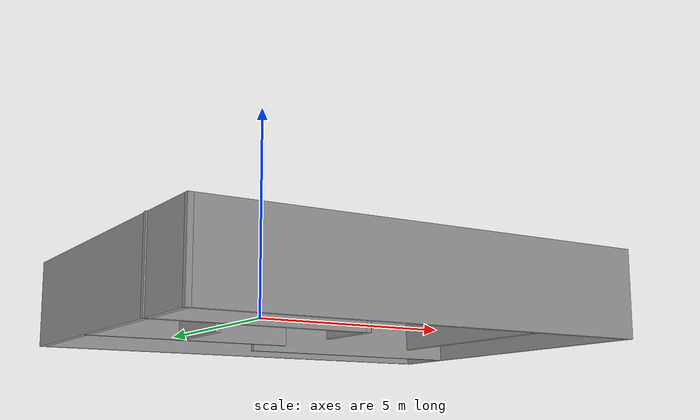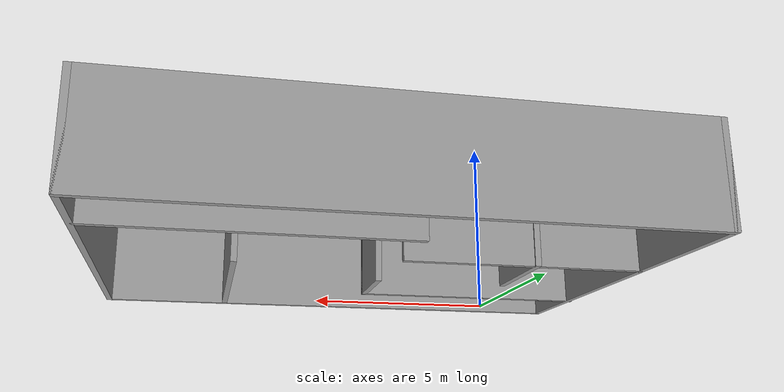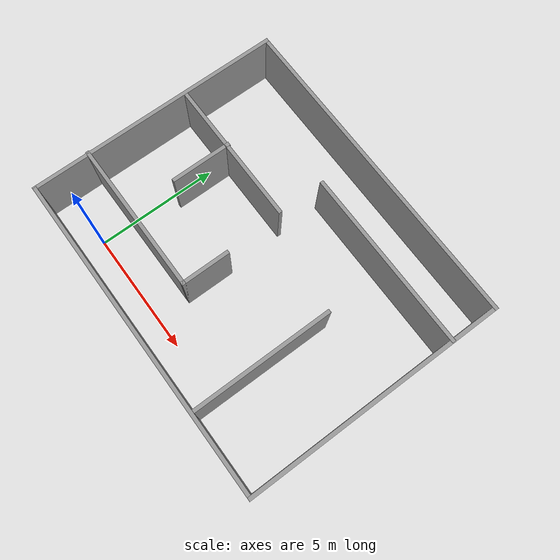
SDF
<?xml version='1.0'?>
<sdf version='1.6'>
  <model name='room1'>
    <pose frame=''>4.30941 4.255 0 0 -0 0</pose>
    <link name='Wall_0'>
      <collision name='Wall_0_Collision'>
        <geometry>
          <box>
            <size>10.5 0.15 2.5</size>
          </box>
        </geometry>
        <pose frame=''>0 0 1.25 0 -0 0</pose>
      </collision>
      <visual name='Wall_0_Visual'>
        <pose frame=''>0 0 1.25 0 -0 0</pose>
        <geometry>
          <box>
            <size>10.5 0.15 2.5</size>
          </box>
        </geometry>
        <material>
          <script>
            <uri>file://media/materials/scripts/gazebo.material</uri>
            <name>Gazebo/Grey</name>
          </script>
          <ambient>1 1 1 1</ambient>
        </material>
        <meta>
          <layer>0</layer>
        </meta>
      </visual>
      <pose frame=''>-6.52941 -0 0 0 -0 1.5708</pose>
    </link>
    <link name='Wall_1'>
      <collision name='Wall_1_Collision'>
        <geometry>
          <box>
            <size>13.25 0.15 2.5</size>
          </box>
        </geometry>
        <pose frame=''>0 0 1.25 0 -0 0</pose>
      </collision>
      <visual name='Wall_1_Visual'>
        <pose frame=''>0 0 1.25 0 -0 0</pose>
        <geometry>
          <box>
            <size>13.25 0.15 2.5</size>
          </box>
        </geometry>
        <material>
          <script>
            <uri>file://media/materials/scripts/gazebo.material</uri>
            <name>Gazebo/Grey</name>
          </script>
          <ambient>1 1 1 1</ambient>
        </material>
        <meta>
          <layer>0</layer>
        </meta>
      </visual>
      <pose frame=''>0.020592 5.175 0 0 -0 0</pose>
    </link>
    <link name='Wall_11'>
      <collision name='Wall_11_Collision'>
        <geometry>
          <box>
            <size>7.25 0.15 2.5</size>
          </box>
        </geometry>
        <pose frame=''>0 0 1.25 0 -0 0</pose>
      </collision>
      <visual name='Wall_11_Visual'>
        <pose frame=''>0 0 1.25 0 -0 0</pose>
        <geometry>
          <box>
            <size>7.25 0.15 2.5</size>
          </box>
        </geometry>
        <material>
          <script>
            <uri>file://media/materials/scripts/gazebo.material</uri>
            <name>Gazebo/Grey</name>
          </script>
          <ambient>1 1 1 1</ambient>
        </material>
        <meta>
          <layer>0</layer>
        </meta>
      </visual>
      <pose frame=''>2.99403 3.26734 0 0 -0 3.14159</pose>
    </link>
    <link name='Wall_13'>
      <collision name='Wall_13_Collision'>
        <geometry>
          <box>
            <size>6 0.15 2.5</size>
          </box>
        </geometry>
        <pose frame=''>0 0 1.25 0 -0 0</pose>
      </collision>
      <visual name='Wall_13_Visual'>
        <pose frame=''>0 0 1.25 0 -0 0</pose>
        <geometry>
          <box>
            <size>6 0.15 2.5</size>
          </box>
        </geometry>
        <material>
          <script>
            <uri>file://media/materials/scripts/gazebo.material</uri>
            <name>Gazebo/Grey</name>
          </script>
          <ambient>1 1 1 1</ambient>
        </material>
        <meta>
          <layer>0</layer>
        </meta>
      </visual>
      <pose frame=''>-3.54712 1.36769 0 0 -0 0</pose>
    </link>
    <link name='Wall_15'>
      <collision name='Wall_15_Collision'>
        <geometry>
          <box>
            <size>2.5 0.15 2.5</size>
          </box>
        </geometry>
        <pose frame=''>0 0 1.25 0 -0 0</pose>
      </collision>
      <visual name='Wall_15_Visual'>
        <pose frame=''>0 0 1.25 0 -0 0</pose>
        <geometry>
          <box>
            <size>2.5 0.15 2.5</size>
          </box>
        </geometry>
        <material>
          <script>
            <uri>file://media/materials/scripts/gazebo.material</uri>
            <name>Gazebo/Grey</name>
          </script>
          <ambient>1 1 1 1</ambient>
        </material>
        <meta>
          <layer>0</layer>
        </meta>
      </visual>
      <pose frame=''>-3.83371 0.227866 0 0 -0 -1.5708</pose>
    </link>
    <link name='Wall_2'>
      <collision name='Wall_2_Collision'>
        <geometry>
          <box>
            <size>10.5 0.15 2.5</size>
          </box>
        </geometry>
        <pose frame=''>0 0 1.25 0 -0 0</pose>
      </collision>
      <visual name='Wall_2_Visual'>
        <pose frame=''>0 0 1.25 0 -0 0</pose>
        <geometry>
          <box>
            <size>10.5 0.15 2.5</size>
          </box>
        </geometry>
        <material>
          <script>
            <uri>file://media/materials/scripts/gazebo.material</uri>
            <name>Gazebo/Grey</name>
          </script>
          <ambient>1 1 1 1</ambient>
        </material>
        <meta>
          <layer>0</layer>
        </meta>
      </visual>
      <pose frame=''>6.57059 -0 0 0 -0 -1.5708</pose>
    </link>
    <link name='Wall_3'>
      <collision name='Wall_3_Collision'>
        <geometry>
          <box>
            <size>13.25 0.15 2.5</size>
          </box>
        </geometry>
        <pose frame=''>0 0 1.25 0 -0 0</pose>
      </collision>
      <visual name='Wall_3_Visual'>
        <pose frame=''>0 0 1.25 0 -0 0</pose>
        <geometry>
          <box>
            <size>13.25 0.15 2.5</size>
          </box>
        </geometry>
        <material>
          <script>
            <uri>file://media/materials/scripts/gazebo.material</uri>
            <name>Gazebo/Grey</name>
          </script>
          <ambient>1 1 1 1</ambient>
        </material>
        <meta>
          <layer>0</layer>
        </meta>
      </visual>
      <pose frame=''>0.020592 -5.175 0 0 -0 3.14159</pose>
    </link>
    <link name='Wall_6'>
      <collision name='Wall_6_Collision'>
        <geometry>
          <box>
            <size>6.25 0.15 2.5</size>
          </box>
        </geometry>
        <pose frame=''>0 0 1.25 0 -0 0</pose>
      </collision>
      <visual name='Wall_6_Visual'>
        <pose frame=''>0 0 1.25 0 -0 0</pose>
        <geometry>
          <box>
            <size>6.25 0.15 2.5</size>
          </box>
        </geometry>
        <material>
          <script>
            <uri>file://media/materials/scripts/gazebo.material</uri>
            <name>Gazebo/Grey</name>
          </script>
          <ambient>1 1 1 1</ambient>
        </material>
        <meta>
          <layer>0</layer>
        </meta>
      </visual>
      <pose frame=''>-3.52059 -2.89108 0 0 -0 0</pose>
    </link>
    <link name='Wall_7'>
      <collision name='Wall_7_Collision'>
        <geometry>
          <box>
            <size>2 0.15 2.5</size>
          </box>
        </geometry>
        <pose frame=''>0 0 1.25 0 -0 0</pose>
      </collision>
      <visual name='Wall_7_Visual'>
        <pose frame=''>0 0 1.25 0 -0 0</pose>
        <geometry>
          <box>
            <size>2 0.15 2.5</size>
          </box>
        </geometry>
        <material>
          <script>
            <uri>file://media/materials/scripts/gazebo.material</uri>
            <name>Gazebo/Grey</name>
          </script>
          <ambient>1 1 1 1</ambient>
        </material>
        <meta>
          <layer>0</layer>
        </meta>
      </visual>
      <pose frame=''>-0.470593 -1.96608 0 0 -0 1.5708</pose>
    </link>
    <link name='Wall_9'>
      <collision name='Wall_9_Collision'>
        <geometry>
          <box>
            <size>5.75 0.15 2.5</size>
          </box>
        </geometry>
        <pose frame=''>0 0 1.25 0 -0 0</pose>
      </collision>
      <visual name='Wall_9_Visual'>
        <pose frame=''>0 0 1.25 0 -0 0</pose>
        <geometry>
          <box>
            <size>5.75 0.15 2.5</size>
          </box>
        </geometry>
        <material>
          <script>
            <uri>file://media/materials/scripts/gazebo.material</uri>
            <name>Gazebo/Grey</name>
          </script>
          <ambient>1 1 1 1</ambient>
        </material>
        <meta>
          <layer>0</layer>
        </meta>
      </visual>
      <pose frame=''>3.29808 -2.29889 0 0 -0 1.5708</pose>
    </link>
    <static>1</static>
  </model>
</sdf>
